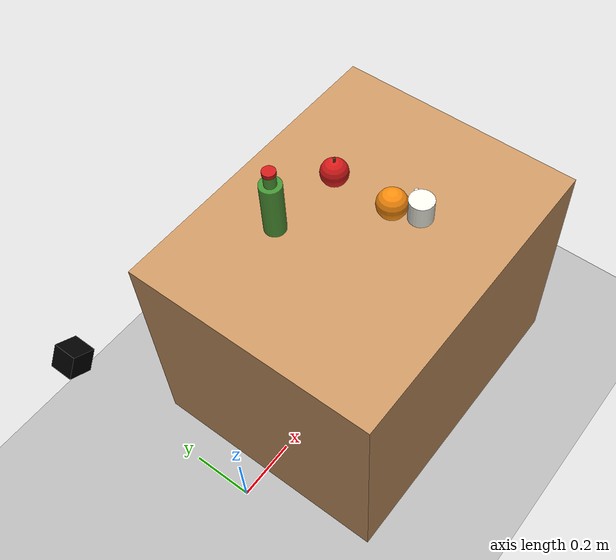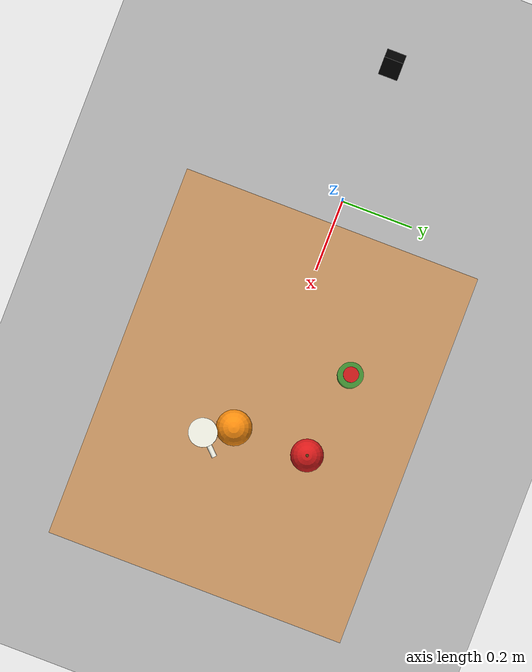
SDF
<sdf version="1.8">
 <world name="camara_robot">
  <plugin filename="ignition-gazebo-physics-system" name="ignition::gazebo::systems::Physics"/>
  <plugin filename="ignition-gazebo-user-commands-system" name="ignition::gazebo::systems::UserCommands"/>
  <plugin filename="ignition-gazebo-scene-broadcaster-system" name="ignition::gazebo::systems::SceneBroadcaster"/>
  <plugin filename="ignition-gazebo-sensors-system" name="ignition::gazebo::systems::Sensors">
   <render_engine>ogre</render_engine>
  </plugin>
  <light name="sun" type="directional">
   <cast_shadows>false</cast_shadows>
   <pose>0 0 5 0 0 0</pose>
   <diffuse>1.0 1.0 1.0 1</diffuse>
   <specular>0.3 0.3 0.3 1</specular>
   <direction>0.1 0.1 -1</direction>
  </light>
  <light name="luz_lateral" type="point">
   <pose>-1 0 1.5 0 0 0</pose>
   <diffuse>0.7 0.7 0.7 1</diffuse>
   <specular>0.0 0.0 0.0 1</specular>
   <attenuation><range>5</range><linear>0.2</linear></attenuation>
  </light>
  <model name="ground_plane">
   <static>true</static>
   <link name="link">
    <collision name="collision">
     <geometry><plane><normal>0 0 1</normal><size>20 20</size></plane></geometry>
    </collision>
    <visual name="visual">
     <geometry><plane><normal>0 0 1</normal><size>20 20</size></plane></geometry>
     <material><ambient>0.6 0.6 0.6 1</ambient><diffuse>0.7 0.7 0.7 1</diffuse></material>
    </visual>
   </link>
  </model>
  <model name="mesa">
   <static>true</static>
   <pose>0.6 0 0.375 0 0 0</pose>
   <link name="link">
    <collision name="collision"><geometry><box><size>1.0 0.8 0.75</size></box></geometry></collision>
    <visual name="visual">
     <geometry><box><size>1.0 0.8 0.75</size></box></geometry>
     <material><ambient>0.72 0.52 0.32 1</ambient><diffuse>0.78 0.58 0.38 1</diffuse></material>
    </visual>
   </link>
  </model>
  <model name="manzana">
   <pose>0.68 0.15 0.793 0 0 0</pose>
   <link name="link">
    <inertial><mass>0.18</mass></inertial>
    <collision name="col"><geometry><sphere><radius>0.043</radius></sphere></geometry></collision>
    <visual name="vis_cuerpo">
     <geometry><sphere><radius>0.043</radius></sphere></geometry>
     <material>
      <ambient>0.75 0.08 0.08 1</ambient>
      <diffuse>0.85 0.1 0.1 1</diffuse>
      <specular>0.6 0.6 0.6 1</specular>
     </material>
    </visual>
    <visual name="vis_rabito">
     <pose>0 0 0.047 0 0 0</pose>
     <geometry><cylinder><radius>0.004</radius><length>0.018</length></cylinder></geometry>
     <material><ambient>0.3 0.18 0.05 1</ambient><diffuse>0.35 0.2 0.05 1</diffuse></material>
    </visual>
   </link>
  </model>
  <model name="naranja">
   <pose>0.68 -0.05 0.797 0 0 0</pose>
   <link name="link">
    <inertial><mass>0.2</mass></inertial>
    <collision name="col"><geometry><sphere><radius>0.047</radius></sphere></geometry></collision>
    <visual name="vis_cuerpo">
     <geometry><sphere><radius>0.047</radius></sphere></geometry>
     <material>
      <ambient>0.92 0.48 0.02 1</ambient>
      <diffuse>0.98 0.55 0.05 1</diffuse>
      <specular>0.3 0.3 0.3 1</specular>
     </material>
    </visual>
   </link>
  </model>
  <model name="botella">
   <pose>0.45 0.18 0.84 0 0 0</pose>
   <link name="link">
    <inertial><mass>0.5</mass></inertial>
    <collision name="col">
     <geometry><cylinder><radius>0.033</radius><length>0.18</length></cylinder></geometry>
    </collision>
    <visual name="vis_cuerpo">
     <geometry><cylinder><radius>0.033</radius><length>0.18</length></cylinder></geometry>
     <material>
      <ambient>0.15 0.45 0.15 0.85</ambient>
      <diffuse>0.2 0.6 0.2 0.85</diffuse>
      <specular>0.9 0.9 0.9 1</specular>
     </material>
    </visual>
    <visual name="vis_cuello">
     <pose>0 0 0.11 0 0 0</pose>
     <geometry><cylinder><radius>0.018</radius><length>0.04</length></cylinder></geometry>
     <material><ambient>0.15 0.45 0.15 0.85</ambient><diffuse>0.2 0.6 0.2 0.85</diffuse></material>
    </visual>
    <visual name="vis_tapon">
     <pose>0 0 0.135 0 0 0</pose>
     <geometry><cylinder><radius>0.02</radius><length>0.012</length></cylinder></geometry>
     <material><ambient>0.7 0.1 0.1 1</ambient><diffuse>0.8 0.1 0.1 1</diffuse></material>
    </visual>
   </link>
  </model>
  <model name="taza">
   <pose>0.72 -0.12 0.787 0 0 0.8</pose>
   <link name="link">
    <inertial><mass>0.25</mass></inertial>
    <collision name="col">
     <geometry><cylinder><radius>0.038</radius><length>0.075</length></cylinder></geometry>
    </collision>
    <visual name="vis_cuerpo">
     <geometry><cylinder><radius>0.038</radius><length>0.075</length></cylinder></geometry>
     <material>
      <ambient>0.92 0.92 0.88 1</ambient>
      <diffuse>0.95 0.95 0.9 1</diffuse>
      <specular>0.4 0.4 0.4 1</specular>
     </material>
    </visual>
    <visual name="vis_asa">
     <pose>0.05 0 0 0 1.5708 0</pose>
     <geometry><cylinder><radius>0.007</radius><length>0.038</length></cylinder></geometry>
     <material><ambient>0.92 0.92 0.88 1</ambient><diffuse>0.95 0.95 0.9 1</diffuse></material>
    </visual>
   </link>
  </model>
  <model name="camara">
   <static>true</static>
   <pose>-0.3 0 1.25 0 0.52 0</pose>
   <link name="link">
    <sensor name="camara_sensor" type="camera">
     <camera>
      <horizontal_fov>1.15</horizontal_fov>
      <image><width>640</width><height>480</height><format>R8G8B8</format></image>
      <clip><near>0.1</near><far>10</far></clip>
     </camera>
     <always_on>true</always_on>
     <update_rate>30</update_rate>
     <topic>/camara/image</topic>
    </sensor>
    <visual name="visual">
     <geometry><box><size>0.05 0.05 0.05</size></box></geometry>
     <material><ambient>0 0 0 1</ambient></material>
    </visual>
   </link>
  </model>
 </world>
</sdf>
